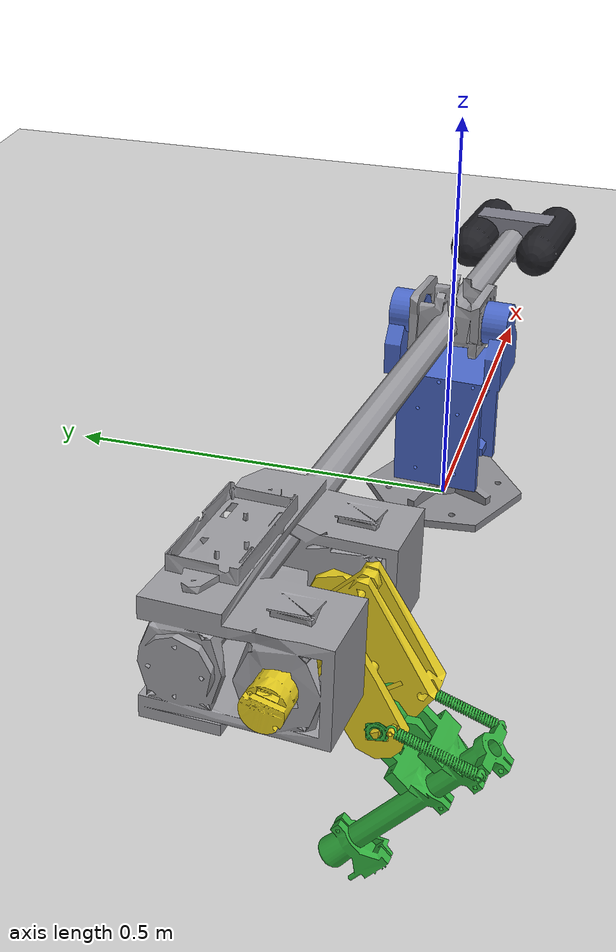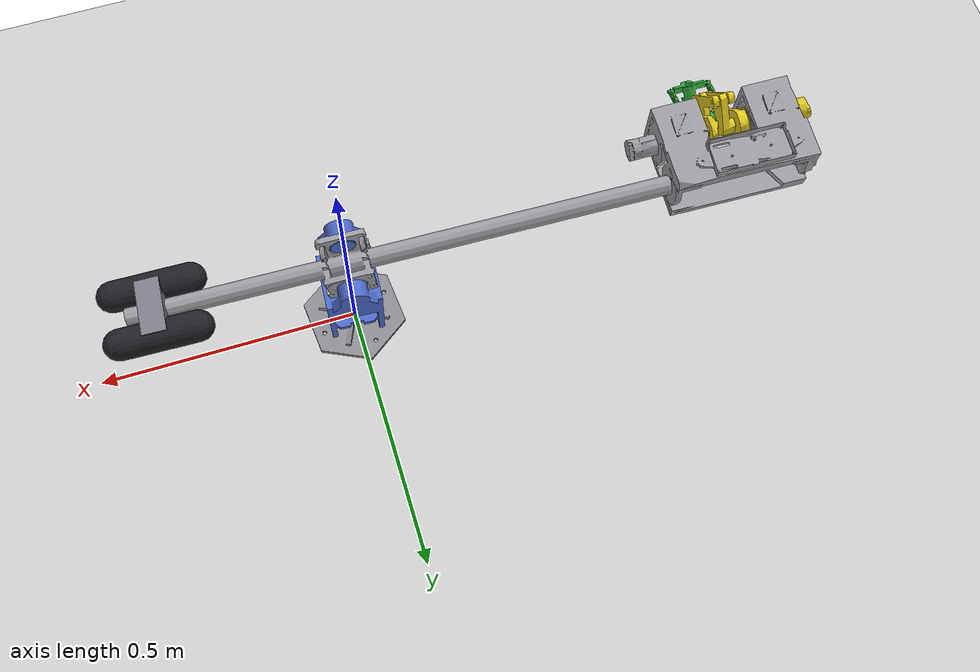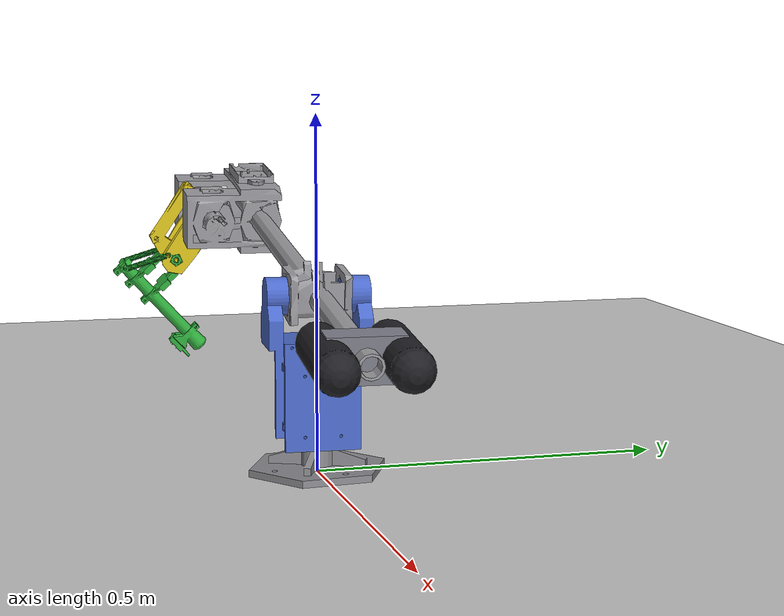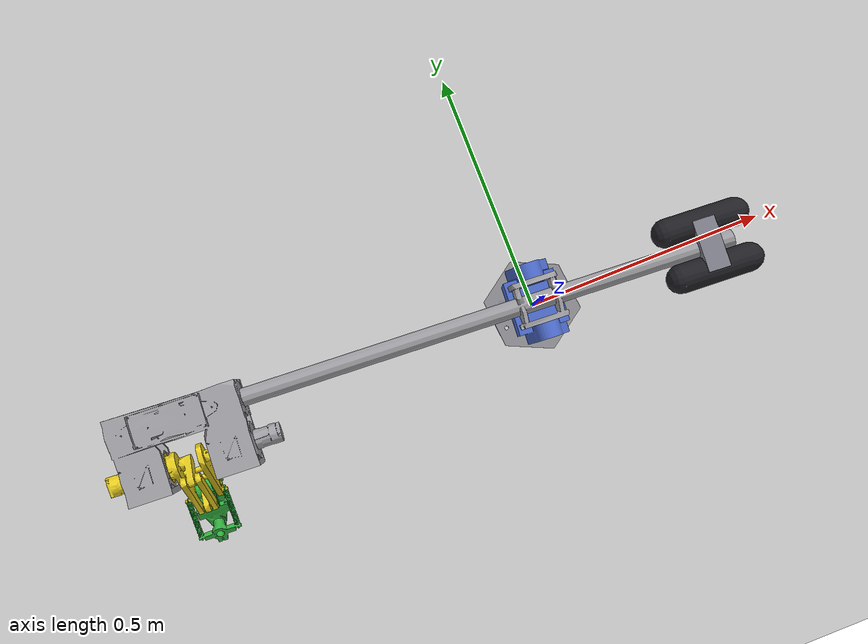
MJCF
<mujoco model="hoppy_cad_view">
    <compiler angle="radian" meshdir="../assets/meshes/hoppy_official_urdf"/>
    <option gravity="0 0 -9.81"/>

    <asset>
        <mesh name="base_link" file="base_link.STL"/>
        <mesh name="Link1" file="Link1.STL"/>
        <mesh name="Link2" file="Link2.STL"/>
        <mesh name="Link3" file="Link3.STL"/>
        <mesh name="Link4" file="Link4.STL"/>
    </asset>

    <default>
        <geom type="mesh" contype="0" conaffinity="0" group="1" density="0"/>
    </default>

    <worldbody>
        <light pos="0.4 -1.5 2.5" dir="-0.2 1 -1.6"/>
        <camera name="main_camera" pos="-0.35 -1.7 0.55" xyaxes="1 0 0 0 0.35 1"/>

        <geom name="floor" type="plane" size="2 2 0.1" rgba="0.8 0.8 0.8 1"/>

        <body name="base_link">
            <inertial pos="0 0 0.0166702" quat="0.5 0.5 -0.5 0.5" mass="0.384125"
                      diaginertia="0.0011789 0.000672971 0.000672971"/>
            <geom mesh="base_link" rgba="0.55 0.55 0.57 1"/>

            <body name="Link1" pos="0 0 0.04">
                <inertial pos="1.19035e-06 -7.23296e-08 0.110977"
                          quat="0.999539 -3.72317e-07 -1.22626e-05 -0.0303481"
                          mass="1.05189" diaginertia="0.0015755 0.00119525 0.000930447"/>
                <joint name="joint1" pos="0 0 0" axis="0 0 1" range="-3.14 3.14"/>
                <geom mesh="Link1" rgba="0.30 0.42 0.80 1"/>

                <body name="Link2" pos="-0.00227444 -0.037431 0.21"
                      quat="0.705252 0.707058 0.00831865 -0.0511876">
                    <inertial pos="-0.513966 0.0016327 -0.00902703"
                              quat="0.500001 0.500001 0.499999 0.499999"
                              mass="1.87654" diaginertia="0.0636508 0.0630427 0.00259304"/>
                    <joint name="joint2" pos="0 0 0" axis="0 0 1" range="-0.5 0.5"/>
                    <geom mesh="Link2" rgba="0.62 0.62 0.64 1"/>
                    <geom name="cw_clamp" type="box" pos="0.34 0 -0.038" size="0.022 0.03 0.05" rgba="0.50 0.50 0.55 1"/>
                    <geom name="cw_1" type="capsule" fromto="0.27 0 0.007 0.41 0 0.007" size="0.028" rgba="0.13 0.13 0.15 1"/>
                    <geom name="cw_2" type="capsule" fromto="0.27 0 -0.083 0.41 0 -0.083" size="0.028" rgba="0.13 0.13 0.15 1"/>

                    <body name="Link3" pos="-0.6585 0 0.0425"
                          quat="0.677009 -0.204104 -0.677009 0.204104">
                        <inertial pos="0.00864428 -0.0327981 0.0561207"
                                  quat="0.511267 0.498647 -0.497438 0.492456"
                                  mass="0.332207" diaginertia="0.000345397 0.000299821 7.12146e-05"/>
                        <joint name="joint3" pos="0 0 0" axis="0 0 1" range="-0.5 0.9"/>
                        <geom mesh="Link3" rgba="0.90 0.80 0.12 1"/>

                        <body name="Link4" pos="0 -0.1 0.0095"
                              quat="0 -0.288647 -0.957436 0">
                            <inertial pos="-0.0162703 -0.0747425 -0.0260399"
                                      quat="0.285014 0.647037 -0.285746 0.646884"
                                      mass="0.172793" diaginertia="0.000170791 0.000165707 3.2109e-05"/>
                            <joint name="joint4" pos="0 0 0" axis="0 0 -1" range="-1.3 0.4"/>
                            <geom mesh="Link4" rgba="0.20 0.70 0.25 1"/>
                        </body>
                    </body>
                </body>
            </body>
        </body>
    </worldbody>

    <keyframe>
        <!-- Slight boom pitch (~3 deg) so the foot rests on the floor for display -->
        <key name="stand" qpos="0 0.06 0 0"/>
    </keyframe>
</mujoco>
